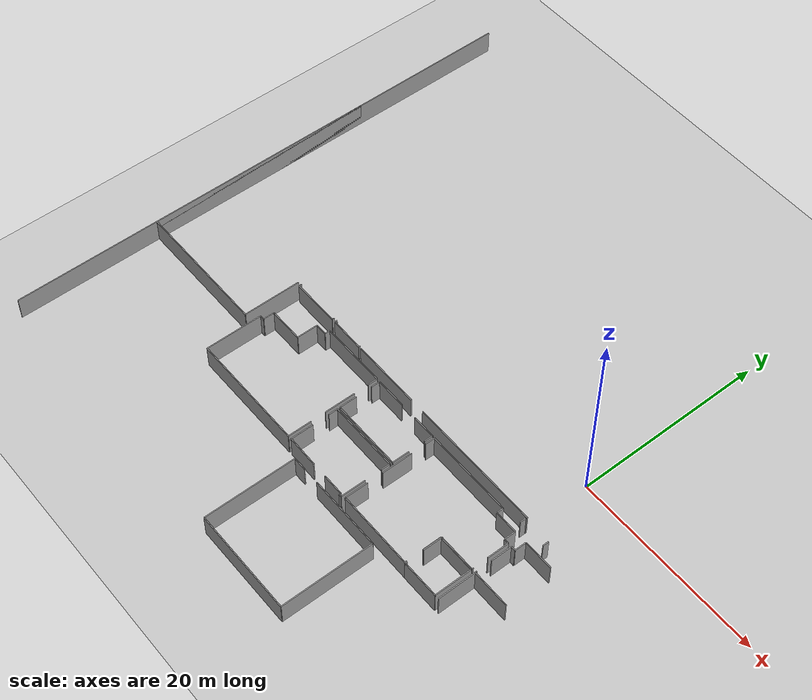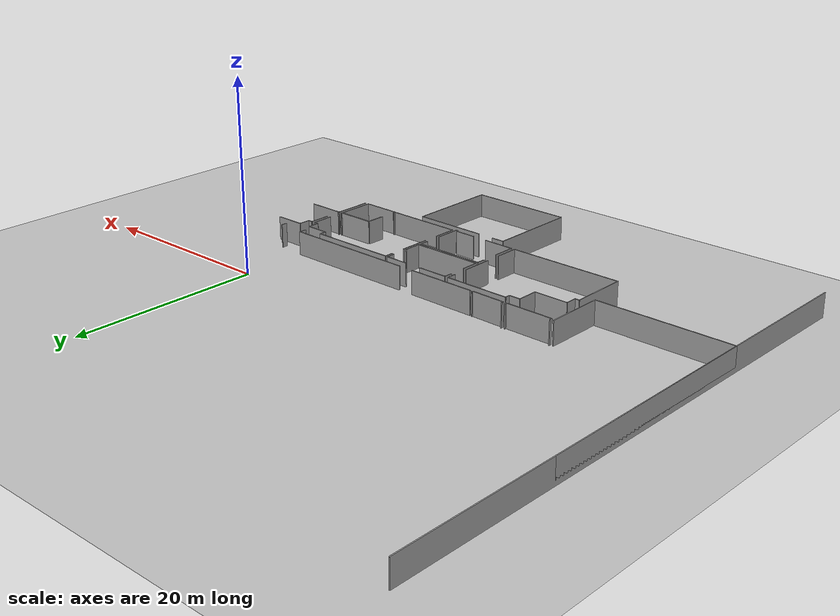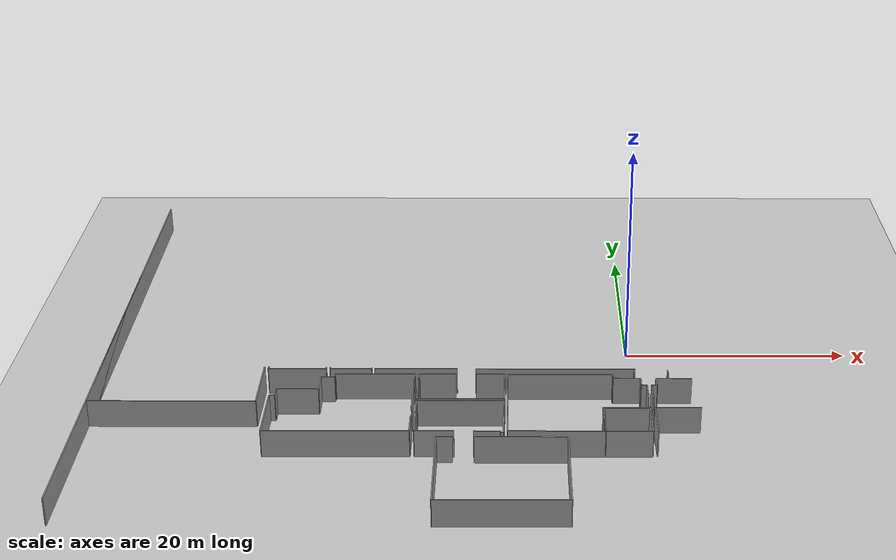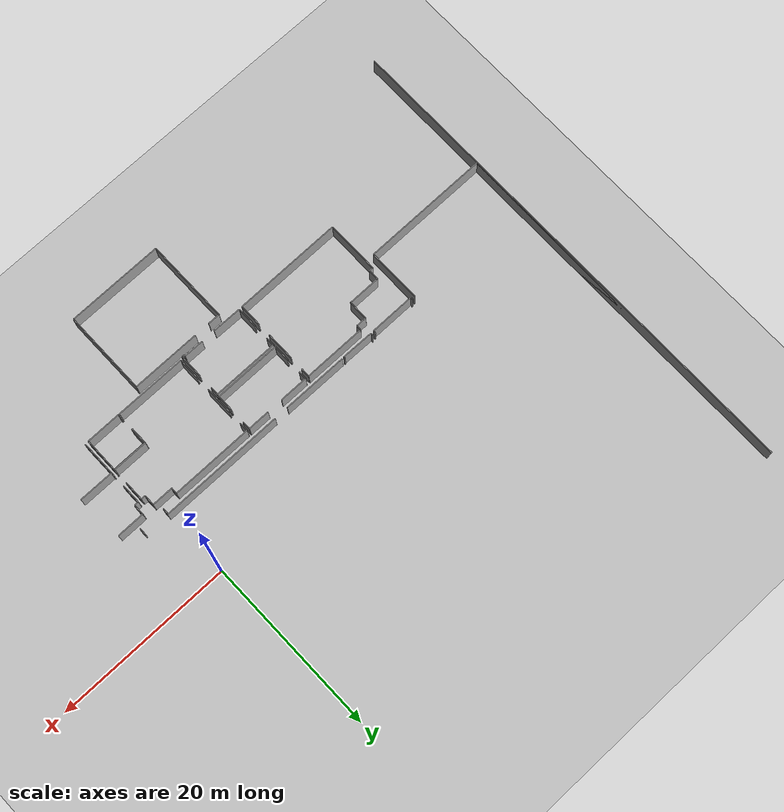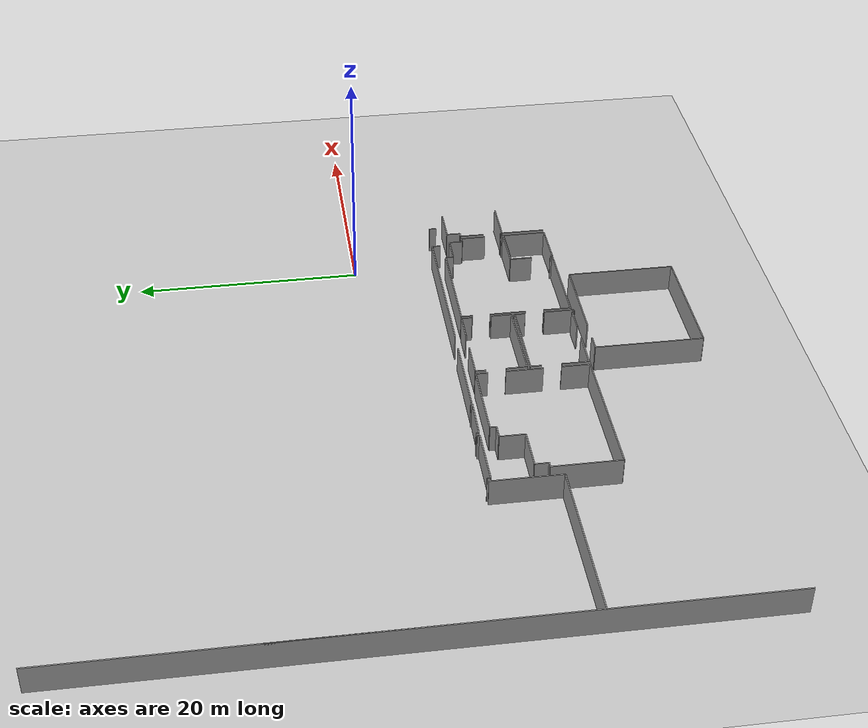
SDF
<sdf version="1.6">
 <world name="default">
  <model name="ground_plane">
   <static>1</static>
   <link name="link">
    <collision name="collision">
     <geometry><plane><normal>0 0 1</normal><size>100 100</size></plane></geometry>
     <surface><friction><ode><mu>100</mu><mu2>50</mu2></ode></friction></surface>
    </collision>
    <visual name="visual">
     <cast_shadows>0</cast_shadows>
     <geometry><plane><normal>0 0 1</normal><size>100 100</size></plane></geometry>
     <material>
      <script><uri>file://media/materials/scripts/gazebo.material</uri><name>Gazebo/Grey</name></script>
     </material>
    </visual>
   </link>
  </model>
  <model name="50045228">
   <static>1</static>
   <link name="Wall_194">
    <collision name="Wall_194_Collision">
     <geometry><box><size>14.0485236751 0.1 2.5</size></box></geometry>
     <pose>7.02426183756 0 1.25 0 0 0</pose>
    </collision>
    <visual name="Wall_194_Visual">
     <pose>7.02426183756 0 1.25 0 0 0</pose>
     <geometry><box><size>14.0485236751 0.1 2.5</size></box></geometry>
     <material>
      <script><uri>file://media/materials/scripts/gazebo.material</uri><name>Gazebo/Grey</name></script>
      <ambient>1 1 1 1</ambient>
     </material>
    </visual>
    <pose>47.1657733659 -35.8174494941 0 0 0 3.14159265359</pose>
   </link>
   <link name="Wall_195">
    <collision name="Wall_195_Collision">
     <geometry><box><size>7.31372421622 0.1 2.5</size></box></geometry>
     <pose>3.65686210811 0 1.25 0 0 0</pose>
    </collision>
    <visual name="Wall_195_Visual">
     <pose>3.65686210811 0 1.25 0 0 0</pose>
     <geometry><box><size>7.31372421622 0.1 2.5</size></box></geometry>
     <material>
      <script><uri>file://media/materials/scripts/gazebo.material</uri><name>Gazebo/Grey</name></script>
      <ambient>1 1 1 1</ambient>
     </material>
    </visual>
    <pose>31.5123529225 -35.8174494941 0 0 0 3.1385918994</pose>
   </link>
   <link name="Wall_300">
    <collision name="Wall_300_Collision">
     <geometry><box><size>0.100091972979 0.1 2.5</size></box></geometry>
     <pose>0.0500459864895 0 1.25 0 0 0</pose>
    </collision>
    <visual name="Wall_300_Visual">
     <pose>0.0500459864895 0 1.25 0 0 0</pose>
     <geometry><box><size>0.100091972979 0.1 2.5</size></box></geometry>
     <material>
      <script><uri>file://media/materials/scripts/gazebo.material</uri><name>Gazebo/Grey</name></script>
      <ambient>1 1 1 1</ambient>
     </material>
    </visual>
    <pose>48.4337318829 -42.6152040849 0 0 0 1.57079632679</pose>
   </link>
   <link name="Wall_301">
    <collision name="Wall_301_Collision">
     <geometry><box><size>2.19403127081 0.1 2.5</size></box></geometry>
     <pose>1.09701563541 0 1.25 0 0 0</pose>
    </collision>
    <visual name="Wall_301_Visual">
     <pose>1.09701563541 0 1.25 0 0 0</pose>
     <geometry><box><size>2.19403127081 0.1 2.5</size></box></geometry>
     <material>
      <script><uri>file://media/materials/scripts/gazebo.material</uri><name>Gazebo/Grey</name></script>
      <ambient>1 1 1 1</ambient>
     </material>
    </visual>
    <pose>48.4337318829 -40.9051409724 0 0 0 1.57079632679</pose>
   </link>
   <link name="Wall_302">
    <collision name="Wall_302_Collision">
     <geometry><box><size>0.469125622403 0.1 2.5</size></box></geometry>
     <pose>0.234562811202 0 1.25 0 0 0</pose>
    </collision>
    <visual name="Wall_302_Visual">
     <pose>0.234562811202 0 1.25 0 0 0</pose>
     <geometry><box><size>0.469125622403 0.1 2.5</size></box></geometry>
     <material>
      <script><uri>file://media/materials/scripts/gazebo.material</uri><name>Gazebo/Grey</name></script>
      <ambient>1 1 1 1</ambient>
     </material>
    </visual>
    <pose>48.4337318829 -38.7111097016 0 0 0 0.0</pose>
   </link>
   <link name="Wall_303">
    <collision name="Wall_303_Collision">
     <geometry><box><size>1.21835653801 0.1 2.5</size></box></geometry>
     <pose>0.609178269005 0 1.25 0 0 0</pose>
    </collision>
    <visual name="Wall_303_Visual">
     <pose>0.609178269005 0 1.25 0 0 0</pose>
     <geometry><box><size>1.21835653801 0.1 2.5</size></box></geometry>
     <material>
      <script><uri>file://media/materials/scripts/gazebo.material</uri><name>Gazebo/Grey</name></script>
      <ambient>1 1 1 1</ambient>
     </material>
    </visual>
    <pose>48.9028575053 -38.7111097016 0 0 0 1.57079632679</pose>
   </link>
   <link name="Wall_304">
    <collision name="Wall_304_Collision">
     <geometry><box><size>3.11756683898 0.1 2.5</size></box></geometry>
     <pose>1.55878341949 0 1.25 0 0 0</pose>
    </collision>
    <visual name="Wall_304_Visual">
     <pose>1.55878341949 0 1.25 0 0 0</pose>
     <geometry><box><size>3.11756683898 0.1 2.5</size></box></geometry>
     <material>
      <script><uri>file://media/materials/scripts/gazebo.material</uri><name>Gazebo/Grey</name></script>
      <ambient>1 1 1 1</ambient>
     </material>
    </visual>
    <pose>48.9028575053 -37.4927531636 0 0 0 0.0</pose>
   </link>
   <link name="Wall_314">
    <collision name="Wall_314_Collision">
     <geometry><box><size>3.94253274555 0.1 2.5</size></box></geometry>
     <pose>1.97126637278 0 1.25 0 0 0</pose>
    </collision>
    <visual name="Wall_314_Visual">
     <pose>1.97126637278 0 1.25 0 0 0</pose>
     <geometry><box><size>3.94253274555 0.1 2.5</size></box></geometry>
     <material>
      <script><uri>file://media/materials/scripts/gazebo.material</uri><name>Gazebo/Grey</name></script>
      <ambient>1 1 1 1</ambient>
     </material>
    </visual>
    <pose>48.4424851733 -46.6152040849 0 0 0 1.57079632679</pose>
   </link>
   <link name="Wall_315">
    <collision name="Wall_315_Collision">
     <geometry><box><size>3.92325013479 0.1 2.5</size></box></geometry>
     <pose>1.96162506739 0 1.25 0 0 0</pose>
    </collision>
    <visual name="Wall_315_Visual">
     <pose>1.96162506739 0 1.25 0 0 0</pose>
     <geometry><box><size>3.92325013479 0.1 2.5</size></box></geometry>
     <material>
      <script><uri>file://media/materials/scripts/gazebo.material</uri><name>Gazebo/Grey</name></script>
      <ambient>1 1 1 1</ambient>
     </material>
    </visual>
    <pose>48.4424851733 -42.6726713393 0 0 0 0.0</pose>
   </link>
   <link name="Wall_319">
    <collision name="Wall_319_Collision">
     <geometry><box><size>0.601947289969 0.1 2.5</size></box></geometry>
     <pose>0.300973644984 0 1.25 0 0 0</pose>
    </collision>
    <visual name="Wall_319_Visual">
     <pose>0.300973644984 0 1.25 0 0 0</pose>
     <geometry><box><size>0.601947289969 0.1 2.5</size></box></geometry>
     <material>
      <script><uri>file://media/materials/scripts/gazebo.material</uri><name>Gazebo/Grey</name></script>
      <ambient>1 1 1 1</ambient>
     </material>
    </visual>
    <pose>47.0968887761 -36.5633820684 0 0 0 1.57079632679</pose>
   </link>
   <link name="Wall_320">
    <collision name="Wall_320_Collision">
     <geometry><box><size>0.629729472583 0.1 2.5</size></box></geometry>
     <pose>0.314864736291 0 1.25 0 0 0</pose>
    </collision>
    <visual name="Wall_320_Visual">
     <pose>0.314864736291 0 1.25 0 0 0</pose>
     <geometry><box><size>0.629729472583 0.1 2.5</size></box></geometry>
     <material>
      <script><uri>file://media/materials/scripts/gazebo.material</uri><name>Gazebo/Grey</name></script>
      <ambient>1 1 1 1</ambient>
     </material>
    </visual>
    <pose>50.0251815673 -35.9614347785 0 0 0 -1.57079632679</pose>
   </link>
   <link name="Wall_322">
    <collision name="Wall_322_Collision">
     <geometry><box><size>0.200183945958 0.1 2.5</size></box></geometry>
     <pose>0.100091972979 0 1.25 0 0 0</pose>
    </collision>
    <visual name="Wall_322_Visual">
     <pose>0.100091972979 0 1.25 0 0 0</pose>
     <geometry><box><size>0.200183945958 0.1 2.5</size></box></geometry>
     <material>
      <script><uri>file://media/materials/scripts/gazebo.material</uri><name>Gazebo/Grey</name></script>
      <ambient>1 1 1 1</ambient>
     </material>
    </visual>
    <pose>44.1130316197 -46.6440011417 0 0 0 1.57079632679</pose>
   </link>
   <link name="Wall_323">
    <collision name="Wall_323_Collision">
     <geometry><box><size>1.91849291174 0.1 2.5</size></box></geometry>
     <pose>0.959246455869 0 1.25 0 0 0</pose>
    </collision>
    <visual name="Wall_323_Visual">
     <pose>0.959246455869 0 1.25 0 0 0</pose>
     <geometry><box><size>1.91849291174 0.1 2.5</size></box></geometry>
     <material>
      <script><uri>file://media/materials/scripts/gazebo.material</uri><name>Gazebo/Grey</name></script>
      <ambient>1 1 1 1</ambient>
     </material>
    </visual>
    <pose>44.1130316197 -44.6679141163 0 0 0 1.57079632679</pose>
   </link>
   <link name="Wall_324">
    <collision name="Wall_324_Collision">
     <geometry><box><size>3.90739272462 0.1 2.5</size></box></geometry>
     <pose>1.95369636231 0 1.25 0 0 0</pose>
    </collision>
    <visual name="Wall_324_Visual">
     <pose>1.95369636231 0 1.25 0 0 0</pose>
     <geometry><box><size>3.90739272462 0.1 2.5</size></box></geometry>
     <material>
      <script><uri>file://media/materials/scripts/gazebo.material</uri><name>Gazebo/Grey</name></script>
      <ambient>1 1 1 1</ambient>
     </material>
    </visual>
    <pose>44.1130316197 -42.7494212045 0 0 0 0.0</pose>
   </link>
   <link name="Wall_325">
    <collision name="Wall_325_Collision">
     <geometry><box><size>3.87580476357 0.1 2.5</size></box></geometry>
     <pose>1.93790238178 0 1.25 0 0 0</pose>
    </collision>
    <visual name="Wall_325_Visual">
     <pose>1.93790238178 0 1.25 0 0 0</pose>
     <geometry><box><size>3.87580476357 0.1 2.5</size></box></geometry>
     <material>
      <script><uri>file://media/materials/scripts/gazebo.material</uri><name>Gazebo/Grey</name></script>
      <ambient>1 1 1 1</ambient>
     </material>
    </visual>
    <pose>48.0204243443 -42.7494212045 0 0 0 -1.57079632679</pose>
   </link>
   <link name="Wall_326">
    <collision name="Wall_326_Collision">
     <geometry><box><size>3.90743783208 0.1 2.5</size></box></geometry>
     <pose>1.95371891604 0 1.25 0 0 0</pose>
    </collision>
    <visual name="Wall_326_Visual">
     <pose>1.95371891604 0 1.25 0 0 0</pose>
     <geometry><box><size>3.90743783208 0.1 2.5</size></box></geometry>
     <material>
      <script><uri>file://media/materials/scripts/gazebo.material</uri><name>Gazebo/Grey</name></script>
      <ambient>1 1 1 1</ambient>
     </material>
    </visual>
    <pose>48.0204243443 -46.6252259681 0 0 0 -3.13678765177</pose>
   </link>
   <link name="Wall_327">
    <collision name="Wall_327_Collision">
     <geometry><box><size>2.42694491136 0.1 2.5</size></box></geometry>
     <pose>1.21347245568 0 1.25 0 0 0</pose>
    </collision>
    <visual name="Wall_327_Visual">
     <pose>1.21347245568 0 1.25 0 0 0</pose>
     <geometry><box><size>2.42694491136 0.1 2.5</size></box></geometry>
     <material>
      <script><uri>file://media/materials/scripts/gazebo.material</uri><name>Gazebo/Grey</name></script>
      <ambient>1 1 1 1</ambient>
     </material>
    </visual>
    <pose>35.9469728204 -46.6281437316 0 0 0 1.57079632679</pose>
   </link>
   <link name="Wall_328">
    <collision name="Wall_328_Collision">
     <geometry><box><size>3.18467539881 0.1 2.5</size></box></geometry>
     <pose>1.59233769941 0 1.25 0 0 0</pose>
    </collision>
    <visual name="Wall_328_Visual">
     <pose>1.59233769941 0 1.25 0 0 0</pose>
     <geometry><box><size>3.18467539881 0.1 2.5</size></box></geometry>
     <material>
      <script><uri>file://media/materials/scripts/gazebo.material</uri><name>Gazebo/Grey</name></script>
      <ambient>1 1 1 1</ambient>
     </material>
    </visual>
    <pose>35.9469728204 -42.5576099711 0 0 0 1.57079632679</pose>
   </link>
   <link name="Wall_329">
    <collision name="Wall_329_Collision">
     <geometry><box><size>1.00726269386 0.1 2.5</size></box></geometry>
     <pose>0.503631346928 0 1.25 0 0 0</pose>
    </collision>
    <visual name="Wall_329_Visual">
     <pose>0.503631346928 0 1.25 0 0 0</pose>
     <geometry><box><size>1.00726269386 0.1 2.5</size></box></geometry>
     <material>
      <script><uri>file://media/materials/scripts/gazebo.material</uri><name>Gazebo/Grey</name></script>
      <ambient>1 1 1 1</ambient>
     </material>
    </visual>
    <pose>35.9469728204 -37.8093939298 0 0 0 1.57079632679</pose>
   </link>
   <link name="Wall_330">
    <collision name="Wall_330_Collision">
     <geometry><box><size>9.21112555897 0.1 2.5</size></box></geometry>
     <pose>4.60556277949 0 1.25 0 0 0</pose>
    </collision>
    <visual name="Wall_330_Visual">
     <pose>4.60556277949 0 1.25 0 0 0</pose>
     <geometry><box><size>9.21112555897 0.1 2.5</size></box></geometry>
     <material>
      <script><uri>file://media/materials/scripts/gazebo.material</uri><name>Gazebo/Grey</name></script>
      <ambient>1 1 1 1</ambient>
     </material>
    </visual>
    <pose>35.9469728204 -36.8021312359 0 0 0 0.0</pose>
   </link>
   <link name="Wall_331">
    <collision name="Wall_331_Collision">
     <geometry><box><size>0.70318099648 0.1 2.5</size></box></geometry>
     <pose>0.35159049824 0 1.25 0 0 0</pose>
    </collision>
    <visual name="Wall_331_Visual">
     <pose>0.35159049824 0 1.25 0 0 0</pose>
     <geometry><box><size>0.70318099648 0.1 2.5</size></box></geometry>
     <material>
      <script><uri>file://media/materials/scripts/gazebo.material</uri><name>Gazebo/Grey</name></script>
      <ambient>1 1 1 1</ambient>
     </material>
    </visual>
    <pose>45.1580983794 -36.8021312359 0 0 0 -1.57079632679</pose>
   </link>
   <link name="Wall_332">
    <collision name="Wall_332_Collision">
     <geometry><box><size>2.38267102217 0.1 2.5</size></box></geometry>
     <pose>1.19133551108 0 1.25 0 0 0</pose>
    </collision>
    <visual name="Wall_332_Visual">
     <pose>1.19133551108 0 1.25 0 0 0</pose>
     <geometry><box><size>2.38267102217 0.1 2.5</size></box></geometry>
     <material>
      <script><uri>file://media/materials/scripts/gazebo.material</uri><name>Gazebo/Grey</name></script>
      <ambient>1 1 1 1</ambient>
     </material>
    </visual>
    <pose>45.1580983794 -37.5053122324 0 0 0 0.0</pose>
   </link>
   <link name="Wall_333">
    <collision name="Wall_333_Collision">
     <geometry><box><size>1.20237226856 0.1 2.5</size></box></geometry>
     <pose>0.601186134281 0 1.25 0 0 0</pose>
    </collision>
    <visual name="Wall_333_Visual">
     <pose>0.601186134281 0 1.25 0 0 0</pose>
     <geometry><box><size>1.20237226856 0.1 2.5</size></box></geometry>
     <material>
      <script><uri>file://media/materials/scripts/gazebo.material</uri><name>Gazebo/Grey</name></script>
      <ambient>1 1 1 1</ambient>
     </material>
    </visual>
    <pose>47.5407694015 -37.5053122324 0 0 0 -1.57079632679</pose>
   </link>
   <link name="Wall_334">
    <collision name="Wall_334_Collision">
     <geometry><box><size>0.489296248137 0.1 2.5</size></box></geometry>
     <pose>0.244648124068 0 1.25 0 0 0</pose>
    </collision>
    <visual name="Wall_334_Visual">
     <pose>0.244648124068 0 1.25 0 0 0</pose>
     <geometry><box><size>0.489296248137 0.1 2.5</size></box></geometry>
     <material>
      <script><uri>file://media/materials/scripts/gazebo.material</uri><name>Gazebo/Grey</name></script>
      <ambient>1 1 1 1</ambient>
     </material>
    </visual>
    <pose>47.5407694015 -38.707684501 0 0 0 0.0</pose>
   </link>
   <link name="Wall_335">
    <collision name="Wall_335_Collision">
     <geometry><box><size>2.25035679173 0.1 2.5</size></box></geometry>
     <pose>1.12517839586 0 1.25 0 0 0</pose>
    </collision>
    <visual name="Wall_335_Visual">
     <pose>1.12517839586 0 1.25 0 0 0</pose>
     <geometry><box><size>2.25035679173 0.1 2.5</size></box></geometry>
     <material>
      <script><uri>file://media/materials/scripts/gazebo.material</uri><name>Gazebo/Grey</name></script>
      <ambient>1 1 1 1</ambient>
     </material>
    </visual>
    <pose>48.0300656497 -38.707684501 0 0 0 -1.57079632679</pose>
   </link>
   <link name="Wall_336">
    <collision name="Wall_336_Collision">
     <geometry><box><size>0.16542450287 0.1 2.5</size></box></geometry>
     <pose>0.0827122514351 0 1.25 0 0 0</pose>
    </collision>
    <visual name="Wall_336_Visual">
     <pose>0.0827122514351 0 1.25 0 0 0</pose>
     <geometry><box><size>0.16542450287 0.1 2.5</size></box></geometry>
     <material>
      <script><uri>file://media/materials/scripts/gazebo.material</uri><name>Gazebo/Grey</name></script>
      <ambient>1 1 1 1</ambient>
     </material>
    </visual>
    <pose>48.0300656497 -42.5244996987 0 0 0 -1.57079632679</pose>
   </link>
   <link name="Wall_337">
    <collision name="Wall_337_Collision">
     <geometry><box><size>3.97513558086 0.1 2.5</size></box></geometry>
     <pose>1.98756779043 0 1.25 0 0 0</pose>
    </collision>
    <visual name="Wall_337_Visual">
     <pose>1.98756779043 0 1.25 0 0 0</pose>
     <geometry><box><size>3.97513558086 0.1 2.5</size></box></geometry>
     <material>
      <script><uri>file://media/materials/scripts/gazebo.material</uri><name>Gazebo/Grey</name></script>
      <ambient>1 1 1 1</ambient>
     </material>
    </visual>
    <pose>48.0300656497 -42.6899242016 0 0 0 3.14159265359</pose>
   </link>
   <link name="Wall_338">
    <collision name="Wall_338_Collision">
     <geometry><box><size>1.97469157337 0.1 2.5</size></box></geometry>
     <pose>0.987345786686 0 1.25 0 0 0</pose>
    </collision>
    <visual name="Wall_338_Visual">
     <pose>0.987345786686 0 1.25 0 0 0</pose>
     <geometry><box><size>1.97469157337 0.1 2.5</size></box></geometry>
     <material>
      <script><uri>file://media/materials/scripts/gazebo.material</uri><name>Gazebo/Grey</name></script>
      <ambient>1 1 1 1</ambient>
     </material>
    </visual>
    <pose>44.0549300688 -42.6899242016 0 0 0 -1.57079632679</pose>
   </link>
   <link name="Wall_339">
    <collision name="Wall_339_Collision">
     <geometry><box><size>0.198534775301 0.1 2.5</size></box></geometry>
     <pose>0.0992673876503 0 1.25 0 0 0</pose>
    </collision>
    <visual name="Wall_339_Visual">
     <pose>0.0992673876503 0 1.25 0 0 0</pose>
     <geometry><box><size>0.198534775301 0.1 2.5</size></box></geometry>
     <material>
      <script><uri>file://media/materials/scripts/gazebo.material</uri><name>Gazebo/Grey</name></script>
      <ambient>1 1 1 1</ambient>
     </material>
    </visual>
    <pose>44.0549300688 -46.4296089563 0 0 0 -1.57079632679</pose>
   </link>
   <link name="Wall_340">
    <collision name="Wall_340_Collision">
     <geometry><box><size>8.10795724842 0.1 2.5</size></box></geometry>
     <pose>4.05397862421 0 1.25 0 0 0</pose>
    </collision>
    <visual name="Wall_340_Visual">
     <pose>4.05397862421 0 1.25 0 0 0</pose>
     <geometry><box><size>8.10795724842 0.1 2.5</size></box></geometry>
     <material>
      <script><uri>file://media/materials/scripts/gazebo.material</uri><name>Gazebo/Grey</name></script>
      <ambient>1 1 1 1</ambient>
     </material>
    </visual>
    <pose>44.0549300688 -46.6281437316 0 0 0 3.14159265359</pose>
   </link>
   <link name="Wall_341">
    <collision name="Wall_341_Collision">
     <geometry><box><size>1.83819098665 0.1 2.5</size></box></geometry>
     <pose>0.919095493324 0 1.25 0 0 0</pose>
    </collision>
    <visual name="Wall_341_Visual">
     <pose>0.919095493324 0 1.25 0 0 0</pose>
     <geometry><box><size>1.83819098665 0.1 2.5</size></box></geometry>
     <material>
      <script><uri>file://media/materials/scripts/gazebo.material</uri><name>Gazebo/Grey</name></script>
      <ambient>1 1 1 1</ambient>
     </material>
    </visual>
    <pose>28.186229425 -41.264787035 0 0 0 1.57079632679</pose>
   </link>
   <link name="Wall_342">
    <collision name="Wall_342_Collision">
     <geometry><box><size>0.928356220862 0.1 2.5</size></box></geometry>
     <pose>0.464178110431 0 1.25 0 0 0</pose>
    </collision>
    <visual name="Wall_342_Visual">
     <pose>0.464178110431 0 1.25 0 0 0</pose>
     <geometry><box><size>0.928356220862 0.1 2.5</size></box></geometry>
     <material>
      <script><uri>file://media/materials/scripts/gazebo.material</uri><name>Gazebo/Grey</name></script>
      <ambient>1 1 1 1</ambient>
     </material>
    </visual>
    <pose>28.186229425 -37.7094288161 0 0 0 1.57079632679</pose>
   </link>
   <link name="Wall_343">
    <collision name="Wall_343_Collision">
     <geometry><box><size>3.22197202753 0.1 2.5</size></box></geometry>
     <pose>1.61098601376 0 1.25 0 0 0</pose>
    </collision>
    <visual name="Wall_343_Visual">
     <pose>1.61098601376 0 1.25 0 0 0</pose>
     <geometry><box><size>3.22197202753 0.1 2.5</size></box></geometry>
     <material>
      <script><uri>file://media/materials/scripts/gazebo.material</uri><name>Gazebo/Grey</name></script>
      <ambient>1 1 1 1</ambient>
     </material>
    </visual>
    <pose>28.186229425 -36.7810725952 0 0 0 0.0</pose>
   </link>
   <link name="Wall_344">
    <collision name="Wall_344_Collision">
     <geometry><box><size>2.48009895024 0.1 2.5</size></box></geometry>
     <pose>1.24004947512 0 1.25 0 0 0</pose>
    </collision>
    <visual name="Wall_344_Visual">
     <pose>1.24004947512 0 1.25 0 0 0</pose>
     <geometry><box><size>2.48009895024 0.1 2.5</size></box></geometry>
     <material>
      <script><uri>file://media/materials/scripts/gazebo.material</uri><name>Gazebo/Grey</name></script>
      <ambient>1 1 1 1</ambient>
     </material>
    </visual>
    <pose>33.1901937776 -36.7810725952 0 0 0 0.0</pose>
   </link>
   <link name="Wall_345">
    <collision name="Wall_345_Collision">
     <geometry><box><size>0.921125241826 0.1 2.5</size></box></geometry>
     <pose>0.460562620913 0 1.25 0 0 0</pose>
    </collision>
    <visual name="Wall_345_Visual">
     <pose>0.460562620913 0 1.25 0 0 0</pose>
     <geometry><box><size>0.921125241826 0.1 2.5</size></box></geometry>
     <material>
      <script><uri>file://media/materials/scripts/gazebo.material</uri><name>Gazebo/Grey</name></script>
      <ambient>1 1 1 1</ambient>
     </material>
    </visual>
    <pose>35.6702927278 -36.7810725952 0 0 0 -1.57079632679</pose>
   </link>
   <link name="Wall_346">
    <collision name="Wall_346_Collision">
     <geometry><box><size>1.80914021122 0.1 2.5</size></box></geometry>
     <pose>0.90457010561 0 1.25 0 0 0</pose>
    </collision>
    <visual name="Wall_346_Visual">
     <pose>0.90457010561 0 1.25 0 0 0</pose>
     <geometry><box><size>1.80914021122 0.1 2.5</size></box></geometry>
     <material>
      <script><uri>file://media/materials/scripts/gazebo.material</uri><name>Gazebo/Grey</name></script>
      <ambient>1 1 1 1</ambient>
     </material>
    </visual>
    <pose>35.6702927278 -39.4357299166 0 0 0 -1.57079632679</pose>
   </link>
   <link name="Wall_347">
    <collision name="Wall_347_Collision">
     <geometry><box><size>7.48408980459 0.1 2.5</size></box></geometry>
     <pose>3.7420449023 0 1.25 0 0 0</pose>
    </collision>
    <visual name="Wall_347_Visual">
     <pose>3.7420449023 0 1.25 0 0 0</pose>
     <geometry><box><size>7.48408980459 0.1 2.5</size></box></geometry>
     <material>
      <script><uri>file://media/materials/scripts/gazebo.material</uri><name>Gazebo/Grey</name></script>
      <ambient>1 1 1 1</ambient>
     </material>
    </visual>
    <pose>35.6702927278 -41.2448701278 0 0 0 -3.13893141739</pose>
   </link>
   <link name="Wall_348">
    <collision name="Wall_348_Collision">
     <geometry><box><size>2.36935079763 0.1 2.5</size></box></geometry>
     <pose>1.18467539881 0 1.25 0 0 0</pose>
    </collision>
    <visual name="Wall_348_Visual">
     <pose>1.18467539881 0 1.25 0 0 0</pose>
     <geometry><box><size>2.36935079763 0.1 2.5</size></box></geometry>
     <material>
      <script><uri>file://media/materials/scripts/gazebo.material</uri><name>Gazebo/Grey</name></script>
      <ambient>1 1 1 1</ambient>
     </material>
    </visual>
    <pose>28.1929529669 -46.6152040849 0 0 0 1.57079632679</pose>
   </link>
   <link name="Wall_349">
    <collision name="Wall_349_Collision">
     <geometry><box><size>0.96882433161 0.1 2.5</size></box></geometry>
     <pose>0.484412165805 0 1.25 0 0 0</pose>
    </collision>
    <visual name="Wall_349_Visual">
     <pose>0.484412165805 0 1.25 0 0 0</pose>
     <geometry><box><size>0.96882433161 0.1 2.5</size></box></geometry>
     <material>
      <script><uri>file://media/materials/scripts/gazebo.material</uri><name>Gazebo/Grey</name></script>
      <ambient>1 1 1 1</ambient>
     </material>
    </visual>
    <pose>28.1929529669 -42.5000158574 0 0 0 1.57079632679</pose>
   </link>
   <link name="Wall_350">
    <collision name="Wall_350_Collision">
     <geometry><box><size>7.43408074593 0.1 2.5</size></box></geometry>
     <pose>3.71704037297 0 1.25 0 0 0</pose>
    </collision>
    <visual name="Wall_350_Visual">
     <pose>3.71704037297 0 1.25 0 0 0</pose>
     <geometry><box><size>7.43408074593 0.1 2.5</size></box></geometry>
     <material>
      <script><uri>file://media/materials/scripts/gazebo.material</uri><name>Gazebo/Grey</name></script>
      <ambient>1 1 1 1</ambient>
     </material>
    </visual>
    <pose>28.1929529669 -41.5311915258 0 0 0 0.0</pose>
   </link>
   <link name="Wall_351">
    <collision name="Wall_351_Collision">
     <geometry><box><size>0.940027274745 0.1 2.5</size></box></geometry>
     <pose>0.470013637373 0 1.25 0 0 0</pose>
    </collision>
    <visual name="Wall_351_Visual">
     <pose>0.470013637373 0 1.25 0 0 0</pose>
     <geometry><box><size>0.940027274745 0.1 2.5</size></box></geometry>
     <material>
      <script><uri>file://media/materials/scripts/gazebo.material</uri><name>Gazebo/Grey</name></script>
      <ambient>1 1 1 1</ambient>
     </material>
    </visual>
    <pose>35.6270337129 -41.5311915258 0 0 0 -1.57079632679</pose>
   </link>
   <link name="Wall_352">
    <collision name="Wall_352_Collision">
     <geometry><box><size>2.62827059085 0.1 2.5</size></box></geometry>
     <pose>1.31413529542 0 1.25 0 0 0</pose>
    </collision>
    <visual name="Wall_352_Visual">
     <pose>1.31413529542 0 1.25 0 0 0</pose>
     <geometry><box><size>2.62827059085 0.1 2.5</size></box></geometry>
     <material>
      <script><uri>file://media/materials/scripts/gazebo.material</uri><name>Gazebo/Grey</name></script>
      <ambient>1 1 1 1</ambient>
     </material>
    </visual>
    <pose>35.6270337129 -44.2170562304 0 0 0 -1.57079632679</pose>
   </link>
   <link name="Wall_353">
    <collision name="Wall_353_Collision">
     <geometry><box><size>0.268561098601 0.1 2.5</size></box></geometry>
     <pose>0.134280549301 0 1.25 0 0 0</pose>
    </collision>
    <visual name="Wall_353_Visual">
     <pose>0.134280549301 0 1.25 0 0 0</pose>
     <geometry><box><size>0.268561098601 0.1 2.5</size></box></geometry>
     <material>
      <script><uri>file://media/materials/scripts/gazebo.material</uri><name>Gazebo/Grey</name></script>
      <ambient>1 1 1 1</ambient>
     </material>
    </visual>
    <pose>35.6270337129 -46.8453268212 0 0 0 3.14159265359</pose>
   </link>
   <link name="Wall_354">
    <collision name="Wall_354_Collision">
     <geometry><box><size>0.191811233389 0.1 2.5</size></box></geometry>
     <pose>0.0959056166947 0 1.25 0 0 0</pose>
    </collision>
    <visual name="Wall_354_Visual">
     <pose>0.0959056166947 0 1.25 0 0 0</pose>
     <geometry><box><size>0.191811233389 0.1 2.5</size></box></geometry>
     <material>
      <script><uri>file://media/materials/scripts/gazebo.material</uri><name>Gazebo/Grey</name></script>
      <ambient>1 1 1 1</ambient>
     </material>
    </visual>
    <pose>35.3584726143 -46.8453268212 0 0 0 1.57079632679</pose>
   </link>
   <link name="Wall_355">
    <collision name="Wall_355_Collision">
     <geometry><box><size>2.24464812407 0.1 2.5</size></box></geometry>
     <pose>1.12232406203 0 1.25 0 0 0</pose>
    </collision>
    <visual name="Wall_355_Visual">
     <pose>1.12232406203 0 1.25 0 0 0</pose>
     <geometry><box><size>2.24464812407 0.1 2.5</size></box></geometry>
     <material>
      <script><uri>file://media/materials/scripts/gazebo.material</uri><name>Gazebo/Grey</name></script>
      <ambient>1 1 1 1</ambient>
     </material>
    </visual>
    <pose>35.3584726143 -46.6535155878 0 0 0 3.14159265359</pose>
   </link>
   <link name="Wall_356">
    <collision name="Wall_356_Collision">
     <geometry><box><size>3.33179872099 0.1 2.5</size></box></geometry>
     <pose>1.66589936049 0 1.25 0 0 0</pose>
    </collision>
    <visual name="Wall_356_Visual">
     <pose>1.66589936049 0 1.25 0 0 0</pose>
     <geometry><box><size>3.33179872099 0.1 2.5</size></box></geometry>
     <material>
      <script><uri>file://media/materials/scripts/gazebo.material</uri><name>Gazebo/Grey</name></script>
      <ambient>1 1 1 1</ambient>
     </material>
    </visual>
    <pose>31.5245314135 -46.6535155878 0 0 0 3.13009365545</pose>
   </link>
   <link name="Wall_357">
    <collision name="Wall_357_Collision">
     <geometry><box><size>9.58929307665 0.1 2.5</size></box></geometry>
     <pose>4.79464653833 0 1.25 0 0 0</pose>
    </collision>
    <visual name="Wall_357_Visual">
     <pose>4.79464653833 0 1.25 0 0 0</pose>
     <geometry><box><size>9.58929307665 0.1 2.5</size></box></geometry>
     <material>
      <script><uri>file://media/materials/scripts/gazebo.material</uri><name>Gazebo/Grey</name></script>
      <ambient>1 1 1 1</ambient>
     </material>
    </visual>
    <pose>30.0499191272 -57.1754781009 0 0 0 1.57079632679</pose>
   </link>
   <link name="Wall_358">
    <collision name="Wall_358_Collision">
     <geometry><box><size>1.37312486125 0.1 2.5</size></box></geometry>
     <pose>0.686562430624 0 1.25 0 0 0</pose>
    </collision>
    <visual name="Wall_358_Visual">
     <pose>0.686562430624 0 1.25 0 0 0</pose>
     <geometry><box><size>1.37312486125 0.1 2.5</size></box></geometry>
     <material>
      <script><uri>file://media/materials/scripts/gazebo.material</uri><name>Gazebo/Grey</name></script>
      <ambient>1 1 1 1</ambient>
     </material>
    </visual>
    <pose>30.0499191272 -47.5861850243 0 0 0 0.0</pose>
   </link>
   <link name="Wall_359">
    <collision name="Wall_359_Collision">
     <geometry><box><size>7.76987726365 0.1 2.5</size></box></geometry>
     <pose>3.88493863182 0 1.25 0 0 0</pose>
    </collision>
    <visual name="Wall_359_Visual">
     <pose>3.88493863182 0 1.25 0 0 0</pose>
     <geometry><box><size>7.76987726365 0.1 2.5</size></box></geometry>
     <material>
      <script><uri>file://media/materials/scripts/gazebo.material</uri><name>Gazebo/Grey</name></script>
      <ambient>1 1 1 1</ambient>
     </material>
    </visual>
    <pose>33.1905743554 -47.5861850243 0 0 0 0.0</pose>
   </link>
   <link name="Wall_360">
    <collision name="Wall_360_Collision">
     <geometry><box><size>9.56417493895 0.1 2.5</size></box></geometry>
     <pose>4.78208746947 0 1.25 0 0 0</pose>
    </collision>
    <visual name="Wall_360_Visual">
     <pose>4.78208746947 0 1.25 0 0 0</pose>
     <geometry><box><size>9.56417493895 0.1 2.5</size></box></geometry>
     <material>
      <script><uri>file://media/materials/scripts/gazebo.material</uri><name>Gazebo/Grey</name></script>
      <ambient>1 1 1 1</ambient>
     </material>
    </visual>
    <pose>40.960451619 -47.5861850243 0 0 0 -1.57079632679</pose>
   </link>
   <link name="Wall_361">
    <collision name="Wall_361_Collision">
     <geometry><box><size>10.9105614052 0.1 2.5</size></box></geometry>
     <pose>5.45528070259 0 1.25 0 0 0</pose>
    </collision>
    <visual name="Wall_361_Visual">
     <pose>5.45528070259 0 1.25 0 0 0</pose>
     <geometry><box><size>10.9105614052 0.1 2.5</size></box></geometry>
     <material>
      <script><uri>file://media/materials/scripts/gazebo.material</uri><name>Gazebo/Grey</name></script>
      <ambient>1 1 1 1</ambient>
     </material>
    </visual>
    <pose>40.960451619 -57.1503599632 0 0 0 -3.13929046592</pose>
   </link>
   <link name="Wall_362">
    <collision name="Wall_362_Collision">
     <geometry><box><size>5.98141511528 0.1 2.5</size></box></geometry>
     <pose>2.99070755764 0 1.25 0 0 0</pose>
    </collision>
    <visual name="Wall_362_Visual">
     <pose>2.99070755764 0 1.25 0 0 0</pose>
     <geometry><box><size>5.98141511528 0.1 2.5</size></box></geometry>
     <material>
      <script><uri>file://media/materials/scripts/gazebo.material</uri><name>Gazebo/Grey</name></script>
      <ambient>1 1 1 1</ambient>
     </material>
    </visual>
    <pose>15.4939583267 -46.6772382734 0 0 0 1.57079632679</pose>
   </link>
   <link name="Wall_363">
    <collision name="Wall_363_Collision">
     <geometry><box><size>0.466842155339 0.1 2.5</size></box></geometry>
     <pose>0.23342107767 0 1.25 0 0 0</pose>
    </collision>
    <visual name="Wall_363_Visual">
     <pose>0.23342107767 0 1.25 0 0 0</pose>
     <geometry><box><size>0.466842155339 0.1 2.5</size></box></geometry>
     <material>
      <script><uri>file://media/materials/scripts/gazebo.material</uri><name>Gazebo/Grey</name></script>
      <ambient>1 1 1 1</ambient>
     </material>
    </visual>
    <pose>15.4939583267 -40.6958231582 0 0 0 0.0</pose>
   </link>
   <link name="Wall_364">
    <collision name="Wall_364_Collision">
     <geometry><box><size>1.1816942057 0.1 2.5</size></box></geometry>
     <pose>0.590847102851 0 1.25 0 0 0</pose>
    </collision>
    <visual name="Wall_364_Visual">
     <pose>0.590847102851 0 1.25 0 0 0</pose>
     <geometry><box><size>1.1816942057 0.1 2.5</size></box></geometry>
     <material>
      <script><uri>file://media/materials/scripts/gazebo.material</uri><name>Gazebo/Grey</name></script>
      <ambient>1 1 1 1</ambient>
     </material>
    </visual>
    <pose>15.9608004821 -40.6958231582 0 0 0 1.57079632679</pose>
   </link>
   <link name="Wall_365">
    <collision name="Wall_365_Collision">
     <geometry><box><size>3.64720433859 0.1 2.5</size></box></geometry>
     <pose>1.82360216929 0 1.25 0 0 0</pose>
    </collision>
    <visual name="Wall_365_Visual">
     <pose>1.82360216929 0 1.25 0 0 0</pose>
     <geometry><box><size>3.64720433859 0.1 2.5</size></box></geometry>
     <material>
      <script><uri>file://media/materials/scripts/gazebo.material</uri><name>Gazebo/Grey</name></script>
      <ambient>1 1 1 1</ambient>
     </material>
    </visual>
    <pose>15.9608004821 -39.5141289525 0 0 0 0.0</pose>
   </link>
   <link name="Wall_366">
    <collision name="Wall_366_Collision">
     <geometry><box><size>2.20291142051 0.1 2.5</size></box></geometry>
     <pose>1.10145571025 0 1.25 0 0 0</pose>
    </collision>
    <visual name="Wall_366_Visual">
     <pose>1.10145571025 0 1.25 0 0 0</pose>
     <geometry><box><size>2.20291142051 0.1 2.5</size></box></geometry>
     <material>
      <script><uri>file://media/materials/scripts/gazebo.material</uri><name>Gazebo/Grey</name></script>
      <ambient>1 1 1 1</ambient>
     </material>
    </visual>
    <pose>19.6080048207 -39.5141289525 0 0 0 1.57079632679</pose>
   </link>
   <link name="Wall_367">
    <collision name="Wall_367_Collision">
     <geometry><box><size>1.21087184041 0.1 2.5</size></box></geometry>
     <pose>0.605435920206 0 1.25 0 0 0</pose>
    </collision>
    <visual name="Wall_367_Visual">
     <pose>0.605435920206 0 1.25 0 0 0</pose>
     <geometry><box><size>1.21087184041 0.1 2.5</size></box></geometry>
     <material>
      <script><uri>file://media/materials/scripts/gazebo.material</uri><name>Gazebo/Grey</name></script>
      <ambient>1 1 1 1</ambient>
     </material>
    </visual>
    <pose>19.6080048207 -37.311217532 0 0 0 0.0</pose>
   </link>
   <link name="Wall_368">
    <collision name="Wall_368_Collision">
     <geometry><box><size>0.554375059465 0.1 2.5</size></box></geometry>
     <pose>0.277187529733 0 1.25 0 0 0</pose>
    </collision>
    <visual name="Wall_368_Visual">
     <pose>0.277187529733 0 1.25 0 0 0</pose>
     <geometry><box><size>0.554375059465 0.1 2.5</size></box></geometry>
     <material>
      <script><uri>file://media/materials/scripts/gazebo.material</uri><name>Gazebo/Grey</name></script>
      <ambient>1 1 1 1</ambient>
     </material>
    </visual>
    <pose>20.8188766611 -37.311217532 0 0 0 1.57079632679</pose>
   </link>
   <link name="Wall_369">
    <collision name="Wall_369_Collision">
     <geometry><box><size>6.98804351273 0.1 2.5</size></box></geometry>
     <pose>3.49402175637 0 1.25 0 0 0</pose>
    </collision>
    <visual name="Wall_369_Visual">
     <pose>3.49402175637 0 1.25 0 0 0</pose>
     <geometry><box><size>6.98804351273 0.1 2.5</size></box></geometry>
     <material>
      <script><uri>file://media/materials/scripts/gazebo.material</uri><name>Gazebo/Grey</name></script>
      <ambient>1 1 1 1</ambient>
     </material>
    </visual>
    <pose>20.8188766611 -36.7568424725 0 0 0 0.0</pose>
   </link>
   <link name="Wall_370">
    <collision name="Wall_370_Collision">
     <geometry><box><size>1.03580603216 0.1 2.5</size></box></geometry>
     <pose>0.517903016079 0 1.25 0 0 0</pose>
    </collision>
    <visual name="Wall_370_Visual">
     <pose>0.517903016079 0 1.25 0 0 0</pose>
     <geometry><box><size>1.03580603216 0.1 2.5</size></box></geometry>
     <material>
      <script><uri>file://media/materials/scripts/gazebo.material</uri><name>Gazebo/Grey</name></script>
      <ambient>1 1 1 1</ambient>
     </material>
    </visual>
    <pose>27.8069201738 -36.7568424725 0 0 0 -1.57079632679</pose>
   </link>
   <link name="Wall_371">
    <collision name="Wall_371_Collision">
     <geometry><box><size>3.24709016523 0.1 2.5</size></box></geometry>
     <pose>1.62354508262 0 1.25 0 0 0</pose>
    </collision>
    <visual name="Wall_371_Visual">
     <pose>1.62354508262 0 1.25 0 0 0</pose>
     <geometry><box><size>3.24709016523 0.1 2.5</size></box></geometry>
     <material>
      <script><uri>file://media/materials/scripts/gazebo.material</uri><name>Gazebo/Grey</name></script>
      <ambient>1 1 1 1</ambient>
     </material>
    </visual>
    <pose>27.8069201738 -39.3365259586 0 0 0 -1.57079632679</pose>
   </link>
   <link name="Wall_372">
    <collision name="Wall_372_Collision">
     <geometry><box><size>2.48732992928 0.1 2.5</size></box></geometry>
     <pose>1.24366496464 0 1.25 0 0 0</pose>
    </collision>
    <visual name="Wall_372_Visual">
     <pose>1.24366496464 0 1.25 0 0 0</pose>
     <geometry><box><size>2.48732992928 0.1 2.5</size></box></geometry>
     <material>
      <script><uri>file://media/materials/scripts/gazebo.material</uri><name>Gazebo/Grey</name></script>
      <ambient>1 1 1 1</ambient>
     </material>
    </visual>
    <pose>27.8069201738 -44.1461418921 0 0 0 -1.57079632679</pose>
   </link>
   <link name="Wall_373">
    <collision name="Wall_373_Collision">
     <geometry><box><size>12.3130396308 0.1 2.5</size></box></geometry>
     <pose>6.1565198154 0 1.25 0 0 0</pose>
    </collision>
    <visual name="Wall_373_Visual">
     <pose>6.1565198154 0 1.25 0 0 0</pose>
     <geometry><box><size>12.3130396308 0.1 2.5</size></box></geometry>
     <material>
      <script><uri>file://media/materials/scripts/gazebo.material</uri><name>Gazebo/Grey</name></script>
      <ambient>1 1 1 1</ambient>
     </material>
    </visual>
    <pose>27.8069201738 -46.6334718214 0 0 0 -3.13803816619</pose>
   </link>
   <link name="Wall_374">
    <collision name="Wall_374_Collision">
     <geometry><box><size>0.249405347119 0.1 2.5</size></box></geometry>
     <pose>0.124702673559 0 1.25 0 0 0</pose>
    </collision>
    <visual name="Wall_374_Visual">
     <pose>0.124702673559 0 1.25 0 0 0</pose>
     <geometry><box><size>0.249405347119 0.1 2.5</size></box></geometry>
     <material>
      <script><uri>file://media/materials/scripts/gazebo.material</uri><name>Gazebo/Grey</name></script>
      <ambient>1 1 1 1</ambient>
     </material>
    </visual>
    <pose>20.2983730297 -35.7758396499 0 0 0 1.57079632679</pose>
   </link>
   <link name="Wall_380">
    <collision name="Wall_380_Collision">
     <geometry><box><size>0.154387745393 0.1 2.5</size></box></geometry>
     <pose>0.0771938726967 0 1.25 0 0 0</pose>
    </collision>
    <visual name="Wall_380_Visual">
     <pose>0.0771938726967 0 1.25 0 0 0</pose>
     <geometry><box><size>0.154387745393 0.1 2.5</size></box></geometry>
     <material>
      <script><uri>file://media/materials/scripts/gazebo.material</uri><name>Gazebo/Grey</name></script>
      <ambient>1 1 1 1</ambient>
     </material>
    </visual>
    <pose>23.9339063144 -35.6740985062 0 0 0 -1.57079632679</pose>
   </link>
   <link name="Wall_381">
    <collision name="Wall_381_Collision">
     <geometry><box><size>3.63591445566 0.1 2.5</size></box></geometry>
     <pose>1.81795722783 0 1.25 0 0 0</pose>
    </collision>
    <visual name="Wall_381_Visual">
     <pose>1.81795722783 0 1.25 0 0 0</pose>
     <geometry><box><size>3.63591445566 0.1 2.5</size></box></geometry>
     <material>
      <script><uri>file://media/materials/scripts/gazebo.material</uri><name>Gazebo/Grey</name></script>
      <ambient>1 1 1 1</ambient>
     </material>
    </visual>
    <pose>23.9339063144 -35.8284862516 0 0 0 3.12711254351</pose>
   </link>
   <link name="Wall_382">
    <collision name="Wall_382_Collision">
     <geometry><box><size>0.291776347087 0.1 2.5</size></box></geometry>
     <pose>0.145888173543 0 1.25 0 0 0</pose>
    </collision>
    <visual name="Wall_382_Visual">
     <pose>0.145888173543 0 1.25 0 0 0</pose>
     <geometry><box><size>0.291776347087 0.1 2.5</size></box></geometry>
     <material>
      <script><uri>file://media/materials/scripts/gazebo.material</uri><name>Gazebo/Grey</name></script>
      <ambient>1 1 1 1</ambient>
     </material>
    </visual>
    <pose>14.842535917 -35.8009577876 0 0 0 1.57079632679</pose>
   </link>
   <link name="Wall_386">
    <collision name="Wall_386_Collision">
     <geometry><box><size>0.220735149535 0.1 2.5</size></box></geometry>
     <pose>0.110367574768 0 1.25 0 0 0</pose>
    </collision>
    <visual name="Wall_386_Visual">
     <pose>0.110367574768 0 1.25 0 0 0</pose>
     <geometry><box><size>0.220735149535 0.1 2.5</size></box></geometry>
     <material>
      <script><uri>file://media/materials/scripts/gazebo.material</uri><name>Gazebo/Grey</name></script>
      <ambient>1 1 1 1</ambient>
     </material>
    </visual>
    <pose>19.9264216168 -35.5637309315 0 0 0 -1.57079632679</pose>
   </link>
   <link name="Wall_387">
    <collision name="Wall_387_Collision">
     <geometry><box><size>5.08391244859 0.1 2.5</size></box></geometry>
     <pose>2.54195622429 0 1.25 0 0 0</pose>
    </collision>
    <visual name="Wall_387_Visual">
     <pose>2.54195622429 0 1.25 0 0 0</pose>
     <geometry><box><size>5.08391244859 0.1 2.5</size></box></geometry>
     <material>
      <script><uri>file://media/materials/scripts/gazebo.material</uri><name>Gazebo/Grey</name></script>
      <ambient>1 1 1 1</ambient>
     </material>
    </visual>
    <pose>19.9264216168 -35.784466081 0 0 0 -3.13834874731</pose>
   </link>
   <link name="Wall_388">
    <collision name="Wall_388_Collision">
     <geometry><box><size>24.7064793378 0.1 2.5</size></box></geometry>
     <pose>12.3532396689 0 1.25 0 0 0</pose>
    </collision>
    <visual name="Wall_388_Visual">
     <pose>12.3532396689 0 1.25 0 0 0</pose>
     <geometry><box><size>24.7064793378 0.1 2.5</size></box></geometry>
     <material>
      <script><uri>file://media/materials/scripts/gazebo.material</uri><name>Gazebo/Grey</name></script>
      <ambient>1 1 1 1</ambient>
     </material>
    </visual>
    <pose>0.0 -41.69991437 0 0 0 1.57079632679</pose>
   </link>
   <link name="Wall_391">
    <collision name="Wall_391_Collision">
     <geometry><box><size>6.10193143256 0.1 2.5</size></box></geometry>
     <pose>3.05096571628 0 1.25 0 0 0</pose>
    </collision>
    <visual name="Wall_391_Visual">
     <pose>3.05096571628 0 1.25 0 0 0</pose>
     <geometry><box><size>6.10193143256 0.1 2.5</size></box></geometry>
     <material>
      <script><uri>file://media/materials/scripts/gazebo.material</uri><name>Gazebo/Grey</name></script>
      <ambient>1 1 1 1</ambient>
     </material>
    </visual>
    <pose>14.474136564 -35.5852970093 0 0 0 -1.57079632679</pose>
   </link>
   <link name="Wall_392">
    <collision name="Wall_392_Collision">
     <geometry><box><size>14.4741421233 0.1 2.5</size></box></geometry>
     <pose>7.23707106167 0 1.25 0 0 0</pose>
    </collision>
    <visual name="Wall_392_Visual">
     <pose>7.23707106167 0 1.25 0 0 0</pose>
     <geometry><box><size>14.4741421233 0.1 2.5</size></box></geometry>
     <material>
      <script><uri>file://media/materials/scripts/gazebo.material</uri><name>Gazebo/Grey</name></script>
      <ambient>1 1 1 1</ambient>
     </material>
    </visual>
    <pose>14.474136564 -41.6872284419 0 0 0 -3.1407161989</pose>
   </link>
   <link name="Wall_437">
    <collision name="Wall_437_Collision">
     <geometry><box><size>57.1754781009 0.1 2.5</size></box></geometry>
     <pose>28.5877390505 0 1.25 0 0 0</pose>
    </collision>
    <visual name="Wall_437_Visual">
     <pose>28.5877390505 0 1.25 0 0 0</pose>
     <geometry><box><size>57.1754781009 0.1 2.5</size></box></geometry>
     <material>
      <script><uri>file://media/materials/scripts/gazebo.material</uri><name>Gazebo/Grey</name></script>
      <ambient>1 1 1 1</ambient>
     </material>
    </visual>
    <pose>0.0 -57.1754781009 0 0 0 1.57079632679</pose>
   </link>
   <pose>-46.9 28.5754781009 0 0 0 0</pose>
  </model>
 </world>
</sdf>
